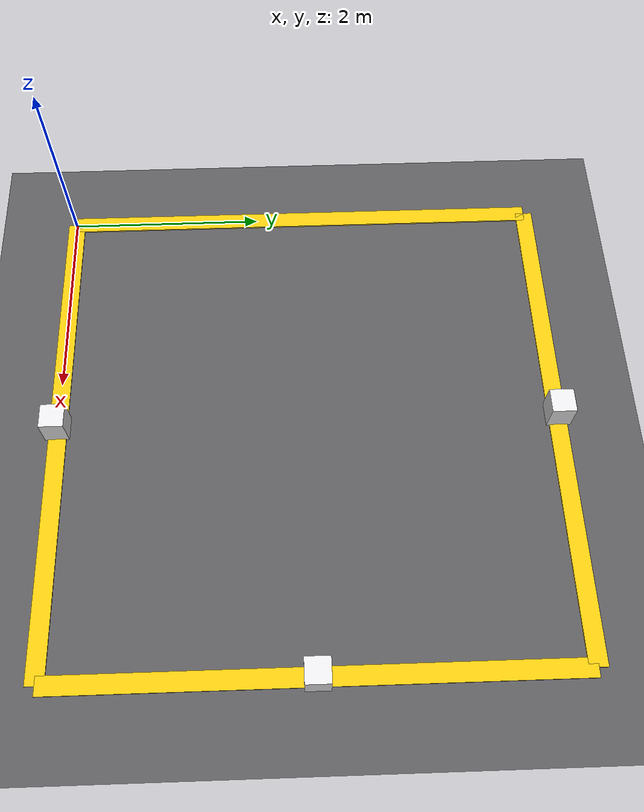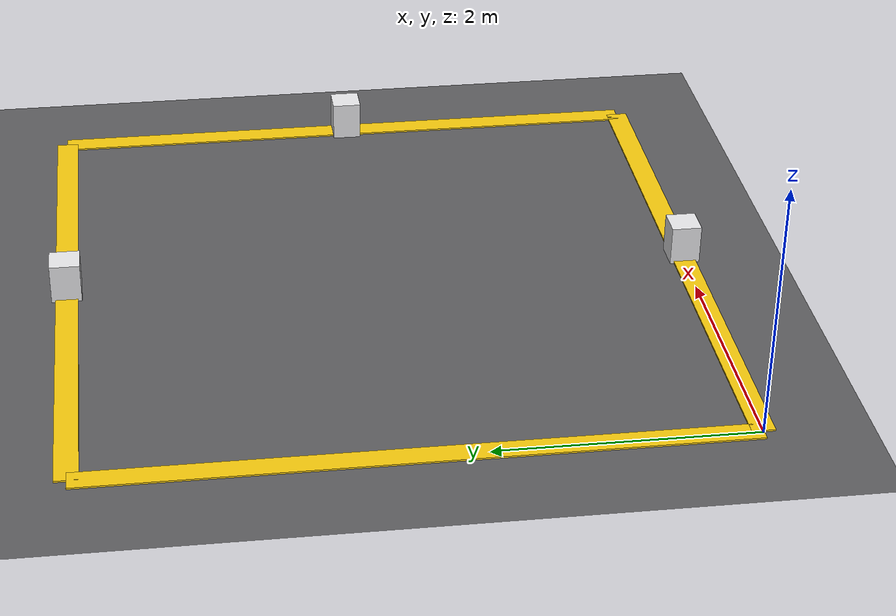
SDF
<?xml version="1.0" ?>
<sdf version="1.6">
  <world name="yellow_line_obstacle_demo">
    <include>
      <uri>model://sun</uri>
    </include>

    <model name="flat_ground">
      <static>true</static>
      <link name="link">
        <collision name="collision">
          <geometry>
            <plane>
              <normal>0 0 1</normal>
              <size>14 12</size>
            </plane>
          </geometry>
        </collision>
        <visual name="visual">
          <geometry>
            <plane>
              <normal>0 0 1</normal>
              <size>14 12</size>
            </plane>
          </geometry>
          <material>
            <ambient>0.34 0.34 0.35 1</ambient>
            <diffuse>0.36 0.36 0.37 1</diffuse>
            <specular>0.05 0.05 0.05 1</specular>
          </material>
        </visual>
      </link>
    </model>

    <!-- CLOSED SQUARE YELLOW TRACK (5.0m x 5.0m) -->

    <!-- Side 1: Bottom Horizontal Line (X from 0 to 5, Y = 0) -->
    <model name="yellow_line_horizontal">
      <static>true</static>
      <pose>2.50 0.00 0.012 0 0 0</pose>
      <link name="link">
        <visual name="visual">
          <geometry>
            <box>
              <size>5.00 0.18 0.014</size>
            </box>
          </geometry>
          <material>
            <ambient>0.92 0.74 0.05 1</ambient>
            <diffuse>0.95 0.78 0.05 1</diffuse>
            <specular>0.05 0.05 0.02 1</specular>
          </material>
        </visual>
      </link>
    </model>

    <!-- Side 2: Right Vertical Line (X = 5, Y from 0 to 5) -->
    <model name="yellow_line_vertical">
      <static>true</static>
      <pose>5.00 2.50 0.012 0 0 0</pose>
      <link name="link">
        <visual name="visual">
          <geometry>
            <box>
              <size>0.18 5.00 0.014</size>
            </box>
          </geometry>
          <material>
            <ambient>0.92 0.74 0.05 1</ambient>
            <diffuse>0.95 0.78 0.05 1</diffuse>
            <specular>0.05 0.05 0.02 1</specular>
          </material>
        </visual>
      </link>
    </model>

    <!-- Side 3: Top Horizontal Line (X from 0 to 5, Y = 5) -->
    <model name="yellow_line_top">
      <static>true</static>
      <pose>2.50 5.00 0.012 0 0 0</pose>
      <link name="link">
        <visual name="visual">
          <geometry>
            <box>
              <size>5.00 0.18 0.014</size>
            </box>
          </geometry>
          <material>
            <ambient>0.92 0.74 0.05 1</ambient>
            <diffuse>0.95 0.78 0.05 1</diffuse>
            <specular>0.05 0.05 0.02 1</specular>
          </material>
        </visual>
      </link>
    </model>

    <!-- Side 4: Left Vertical Line (X = 0, Y from 0 to 5) -->
    <model name="yellow_line_left">
      <static>true</static>
      <pose>0.00 2.50 0.012 0 0 0</pose>
      <link name="link">
        <visual name="visual">
          <geometry>
            <box>
              <size>0.18 5.00 0.014</size>
            </box>
          </geometry>
          <material>
            <ambient>0.92 0.74 0.05 1</ambient>
            <diffuse>0.95 0.78 0.05 1</diffuse>
            <specular>0.05 0.05 0.02 1</specular>
          </material>
        </visual>
      </link>
    </model>

    <!-- CENTERED STATIC OBSTACLES -->

    <!-- Obstacle 1: Centered on Side 1 -->
    <model name="obstacle_one">
      <static>true</static>
      <pose>2.50 0.00 0.16 0 0 0</pose>
      <link name="link">
        <collision name="collision">
          <geometry>
            <box>
              <size>0.24 0.24 0.32</size>
            </box>
          </geometry>
        </collision>
        <visual name="visual">
          <geometry>
            <box>
              <size>0.24 0.24 0.32</size>
            </box>
          </geometry>
          <material>
            <ambient>0.85 0.85 0.86 1</ambient>
            <diffuse>0.90 0.90 0.91 1</diffuse>
            <specular>0.12 0.12 0.12 1</specular>
          </material>
        </visual>
      </link>
    </model>

    <!-- Obstacle 2: Centered on Side 2 -->
    <model name="obstacle_two">
      <static>true</static>
      <pose>5.00 2.50 0.16 0 0 0</pose>
      <link name="link">
        <collision name="collision">
          <geometry>
            <box>
              <size>0.24 0.24 0.32</size>
            </box>
          </geometry>
        </collision>
        <visual name="visual">
          <geometry>
            <box>
              <size>0.24 0.24 0.32</size>
            </box>
          </geometry>
          <material>
            <ambient>0.85 0.85 0.86 1</ambient>
            <diffuse>0.90 0.90 0.91 1</diffuse>
            <specular>0.12 0.12 0.12 1</specular>
          </material>
        </visual>
      </link>
    </model>

    <!-- Obstacle 3: Centered on Side 3 -->
    <model name="obstacle_three">
      <static>true</static>
      <pose>2.50 5.00 0.16 0 0 0</pose>
      <link name="link">
        <collision name="collision">
          <geometry>
            <box>
              <size>0.24 0.24 0.32</size>
            </box>
          </geometry>
        </collision>
        <visual name="visual">
          <geometry>
            <box>
              <size>0.24 0.24 0.32</size>
            </box>
          </geometry>
          <material>
            <ambient>0.85 0.85 0.86 1</ambient>
            <diffuse>0.90 0.90 0.91 1</diffuse>
            <specular>0.12 0.12 0.12 1</specular>
          </material>
        </visual>
      </link>
    </model>
  </world>
</sdf>
